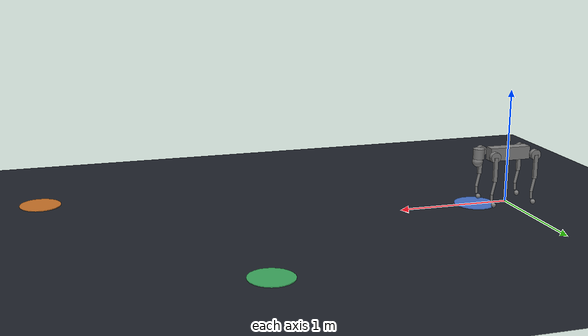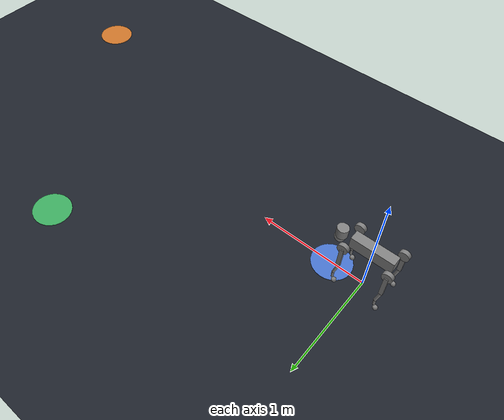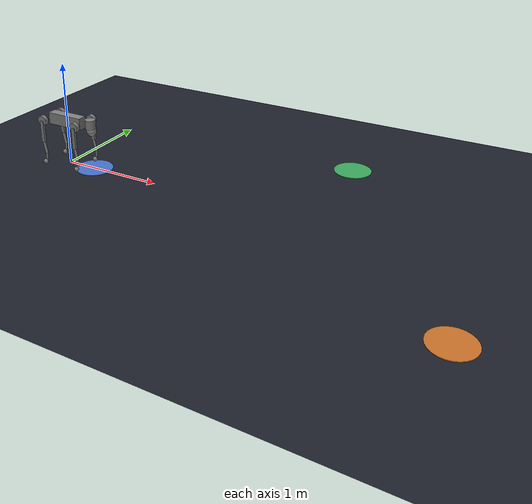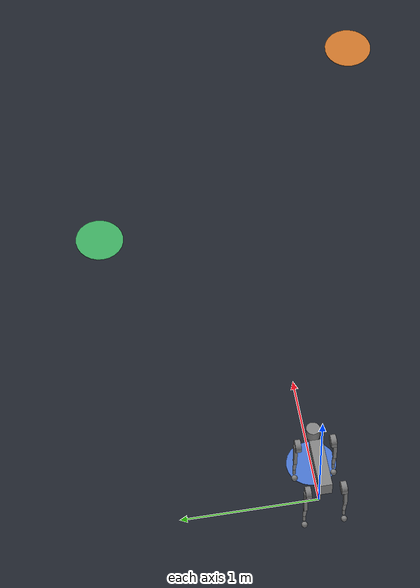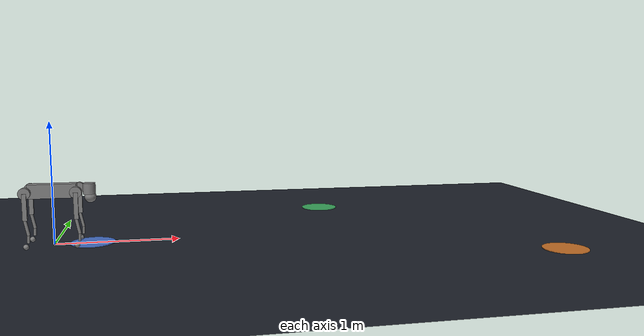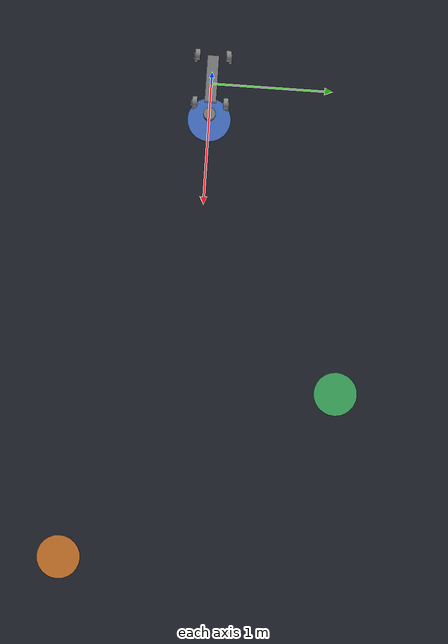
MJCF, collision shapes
<mujoco model="quadloco_mission">
  <!-- Flat scene with three visible (non-colliding) goal markers, for the autonomous
       go-to-goal mission demo. Same Go2 + IMU sensors as scene.xml; go2.xml untouched. -->
  <include file="go2/go2.xml"/>
  <option timestep="0.002"/>
  <statistic center="1.5 0 0.2" extent="3.0"/>

  <visual>
    <headlight diffuse="0.5 0.5 0.5" ambient="0.35 0.35 0.35" specular="0.1 0.1 0.1"/>
    <rgba haze="0.15 0.25 0.35 1"/>
    <global azimuth="120" elevation="-30" offwidth="1280" offheight="720"/>
    <quality shadowsize="4096"/>
  </visual>

  <asset>
    <texture type="skybox" builtin="gradient" rgb1="0.45 0.6 0.78" rgb2="0.05 0.07 0.12" width="512" height="3072"/>
    <texture type="2d" name="grid" builtin="checker" mark="edge" rgb1="0.14 0.16 0.20" rgb2="0.09 0.10 0.13" markrgb="0.5 0.55 0.65" width="300" height="300"/>
    <material name="grid" texture="grid" texuniform="true" texrepeat="8 8" reflectance="0.12"/>
    <material name="g1" rgba="0.30 0.80 0.45 0.85"/>
    <material name="g2" rgba="0.95 0.55 0.20 0.85"/>
    <material name="g3" rgba="0.35 0.55 0.95 0.85"/>
  </asset>

  <worldbody>
    <light name="key" pos="2.0 -1.0 3.0" dir="-0.4 0.2 -1" diffuse="0.8 0.8 0.8" specular="0.2 0.2 0.2"/>
    <light name="fill" pos="-1.0 1.0 2.0" dir="0.3 -0.3 -1" diffuse="0.3 0.3 0.35"/>
    <geom name="floor" type="plane" size="0 0 0.05" material="grid" friction="1.0 0.02 0.001"/>

    <!-- goal markers (visual only: no collision) at the 3 mission waypoints -->
    <geom name="goal1" type="cylinder" size="0.18 0.004" pos="2.5 1.2 0.004" material="g1" contype="0" conaffinity="0"/>
    <geom name="goal2" type="cylinder" size="0.18 0.004" pos="4.0 -1.0 0.004" material="g2" contype="0" conaffinity="0"/>
    <geom name="goal3" type="cylinder" size="0.18 0.004" pos="0.3 0.0 0.004" material="g3" contype="0" conaffinity="0"/>

    <camera name="track_cam" mode="targetbody" target="base" pos="2.0 -2.4 1.4"/>
    <camera name="scene_cam" pos="2.0 -3.4 2.6" xyaxes="1 0 0 0 0.7 0.7"/>
  </worldbody>

  <sensor>
    <framequat name="imu_quat" objtype="site" objname="imu"/>
    <gyro name="imu_gyro" site="imu"/>
    <accelerometer name="imu_acc" site="imu"/>
    <velocimeter name="imu_vel" site="imu"/>
    <framepos name="base_pos" objtype="site" objname="imu"/>
  </sensor>
</mujoco>

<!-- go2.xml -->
<mujoco model="go2">
  <compiler angle="radian" meshdir="go2/assets" autolimits="true"/>

  <option cone="elliptic" impratio="100"/>

  <default>
    <default class="go2">
      <geom friction="0.6" margin="0.001" condim="1"/>
      <joint axis="0 1 0" damping="2" armature="0.01" frictionloss="0.2"/>
      <motor ctrlrange="-23.7 23.7"/>
      <default class="abduction">
        <joint axis="1 0 0" range="-1.0472 1.0472"/>
      </default>
      <default class="hip">
        <default class="front_hip">
          <joint range="-1.5708 3.4907"/>
        </default>
        <default class="back_hip">
          <joint range="-0.5236 4.5379"/>
        </default>
      </default>
      <default class="knee">
        <joint range="-2.7227 -0.83776"/>
        <motor ctrlrange="-45.43 45.43"/>
      </default>
      <default class="visual">
        <geom type="mesh" contype="0" conaffinity="0" group="2"/>
      </default>
      <default class="collision">
        <geom group="3"/>
        <default class="foot">
          <geom size="0.022" pos="-0.002 0 -0.213" priority="1" solimp="0.015 1 0.022" condim="6"
            friction="0.8 0.02 0.01"/>
        </default>
      </default>
    </default>
  </default>

  <asset>
    <material name="metal" rgba=".9 .95 .95 1"/>
    <material name="black" rgba="0 0 0 1"/>
    <material name="white" rgba="1 1 1 1"/>
    <material name="gray" rgba="0.671705 0.692426 0.774270 1"/>

    <mesh file="base_0.obj"/>
    <mesh file="base_1.obj"/>
    <mesh file="base_2.obj"/>
    <mesh file="base_3.obj"/>
    <mesh file="base_4.obj"/>
    <mesh file="hip_0.obj"/>
    <mesh file="hip_1.obj"/>
    <mesh file="thigh_0.obj"/>
    <mesh file="thigh_1.obj"/>
    <mesh file="thigh_mirror_0.obj"/>
    <mesh file="thigh_mirror_1.obj"/>
    <mesh file="calf_0.obj"/>
    <mesh file="calf_1.obj"/>
    <mesh file="calf_mirror_0.obj"/>
    <mesh file="calf_mirror_1.obj"/>
    <mesh file="foot.obj"/>
  </asset>

  <worldbody>
    <body name="base" pos="0 0 0.445" childclass="go2">
      <inertial pos="0.021112 0 -0.005366" quat="-0.000543471 0.713435 -0.00173769 0.700719" mass="6.921"
        diaginertia="0.107027 0.0980771 0.0244531"/>
      <freejoint/>
      <geom mesh="base_0" material="black" class="visual"/>
      <geom mesh="base_1" material="black" class="visual"/>
      <geom mesh="base_2" material="black" class="visual"/>
      <geom mesh="base_3" material="white" class="visual"/>
      <geom mesh="base_4" material="gray" class="visual"/>
      <geom size="0.1881 0.04675 0.057" type="box" class="collision"/>
      <geom size="0.05 0.045" pos="0.285 0 0.01" type="cylinder" class="collision"/>
      <geom size="0.047" pos="0.293 0 -0.06" class="collision"/>
      <site name="imu" pos="-0.02557 0 0.04232"/>
      <body name="FL_hip" pos="0.1934 0.0465 0">
        <inertial pos="-0.0054 0.00194 -0.000105" quat="0.497014 0.499245 0.505462 0.498237" mass="0.678"
          diaginertia="0.00088403 0.000596003 0.000479967"/>
        <joint name="FL_hip_joint" class="abduction"/>
        <geom mesh="hip_0" material="metal" class="visual"/>
        <geom mesh="hip_1" material="gray" class="visual"/>
        <geom size="0.046 0.02" pos="0 0.08 0" quat="1 1 0 0" type="cylinder" class="collision"/>
        <body name="FL_thigh" pos="0 0.0955 0">
          <inertial pos="-0.00374 -0.0223 -0.0327" quat="0.829533 0.0847635 -0.0200632 0.551623" mass="1.152"
            diaginertia="0.00594973 0.00584149 0.000878787"/>
          <joint name="FL_thigh_joint" class="front_hip"/>
          <geom mesh="thigh_0" material="metal" class="visual"/>
          <geom mesh="thigh_1" material="gray" class="visual"/>
          <geom size="0.1065 0.01225 0.017" pos="0 0 -0.1065" quat="0.707107 0 0.707107 0" type="box"
            class="collision"/>
          <body name="FL_calf" pos="0 0 -0.213">
            <inertial pos="0.00629595 -0.000622121 -0.141417" quat="0.710672 0.00154099 -0.00450087 0.703508"
              mass="0.241352" diaginertia="0.0014901 0.00146356 5.31397e-05"/>
            <joint name="FL_calf_joint" class="knee"/>
            <geom mesh="calf_0" material="gray" class="visual"/>
            <geom mesh="calf_1" material="black" class="visual"/>
            <geom size="0.012 0.06" pos="0.008 0 -0.06" quat="0.994493 0 -0.104807 0" type="cylinder"
              class="collision"/>
            <geom size="0.011 0.0325" pos="0.02 0 -0.148" quat="0.999688 0 0.0249974 0" type="cylinder"
              class="collision"/>
            <geom pos="0 0 -0.213" mesh="foot" class="visual" material="black"/>
            <geom name="FL" class="foot"/>
          </body>
        </body>
      </body>
      <body name="FR_hip" pos="0.1934 -0.0465 0">
        <inertial pos="-0.0054 -0.00194 -0.000105" quat="0.498237 0.505462 0.499245 0.497014" mass="0.678"
          diaginertia="0.00088403 0.000596003 0.000479967"/>
        <joint name="FR_hip_joint" class="abduction"/>
        <geom mesh="hip_0" material="metal" class="visual" quat="4.63268e-05 1 0 0"/>
        <geom mesh="hip_1" material="gray" class="visual" quat="4.63268e-05 1 0 0"/>
        <geom size="0.046 0.02" pos="0 -0.08 0" quat="0.707107 0.707107 0 0" type="cylinder" class="collision"/>
        <body name="FR_thigh" pos="0 -0.0955 0">
          <inertial pos="-0.00374 0.0223 -0.0327" quat="0.551623 -0.0200632 0.0847635 0.829533" mass="1.152"
            diaginertia="0.00594973 0.00584149 0.000878787"/>
          <joint name="FR_thigh_joint" class="front_hip"/>
          <geom mesh="thigh_mirror_0" material="metal" class="visual"/>
          <geom mesh="thigh_mirror_1" material="gray" class="visual"/>
          <geom size="0.1065 0.01225 0.017" pos="0 0 -0.1065" quat="0.707107 0 0.707107 0" type="box"
            class="collision"/>
          <body name="FR_calf" pos="0 0 -0.213">
            <inertial pos="0.00629595 0.000622121 -0.141417" quat="0.703508 -0.00450087 0.00154099 0.710672"
              mass="0.241352" diaginertia="0.0014901 0.00146356 5.31397e-05"/>
            <joint name="FR_calf_joint" class="knee"/>
            <geom mesh="calf_mirror_0" material="gray" class="visual"/>
            <geom mesh="calf_mirror_1" material="black" class="visual"/>
            <geom size="0.013 0.06" pos="0.01 0 -0.06" quat="0.995004 0 -0.0998334 0" type="cylinder"
              class="collision"/>
            <geom size="0.011 0.0325" pos="0.02 0 -0.148" quat="0.999688 0 0.0249974 0" type="cylinder"
              class="collision"/>
            <geom pos="0 0 -0.213" mesh="foot" class="visual" material="black"/>
            <geom name="FR" class="foot"/>
          </body>
        </body>
      </body>
      <body name="RL_hip" pos="-0.1934 0.0465 0">
        <inertial pos="0.0054 0.00194 -0.000105" quat="0.505462 0.498237 0.497014 0.499245" mass="0.678"
          diaginertia="0.00088403 0.000596003 0.000479967"/>
        <joint name="RL_hip_joint" class="abduction"/>
        <geom mesh="hip_0" material="metal" class="visual" quat="4.63268e-05 0 1 0"/>
        <geom mesh="hip_1" material="gray" class="visual" quat="4.63268e-05 0 1 0"/>
        <geom size="0.046 0.02" pos="0 0.08 0" quat="0.707107 0.707107 0 0" type="cylinder" class="collision"/>
        <body name="RL_thigh" pos="0 0.0955 0">
          <inertial pos="-0.00374 -0.0223 -0.0327" quat="0.829533 0.0847635 -0.0200632 0.551623" mass="1.152"
            diaginertia="0.00594973 0.00584149 0.000878787"/>
          <joint name="RL_thigh_joint" class="back_hip"/>
          <geom mesh="thigh_0" material="metal" class="visual"/>
          <geom mesh="thigh_1" material="gray" class="visual"/>
          <geom size="0.1065 0.01225 0.017" pos="0 0 -0.1065" quat="0.707107 0 0.707107 0" type="box"
            class="collision"/>
          <body name="RL_calf" pos="0 0 -0.213">
            <inertial pos="0.00629595 -0.000622121 -0.141417" quat="0.710672 0.00154099 -0.00450087 0.703508"
              mass="0.241352" diaginertia="0.0014901 0.00146356 5.31397e-05"/>
            <joint name="RL_calf_joint" class="knee"/>
            <geom mesh="calf_0" material="gray" class="visual"/>
            <geom mesh="calf_1" material="black" class="visual"/>
            <geom size="0.013 0.06" pos="0.01 0 -0.06" quat="0.995004 0 -0.0998334 0" type="cylinder"
              class="collision"/>
            <geom size="0.011 0.0325" pos="0.02 0 -0.148" quat="0.999688 0 0.0249974 0" type="cylinder"
              class="collision"/>
            <geom pos="0 0 -0.213" mesh="foot" class="visual" material="black"/>
            <geom name="RL" class="foot"/>
          </body>
        </body>
      </body>
      <body name="RR_hip" pos="-0.1934 -0.0465 0">
        <inertial pos="0.0054 -0.00194 -0.000105" quat="0.499245 0.497014 0.498237 0.505462" mass="0.678"
          diaginertia="0.00088403 0.000596003 0.000479967"/>
        <joint name="RR_hip_joint" class="abduction"/>
        <geom mesh="hip_0" material="metal" class="visual" quat="2.14617e-09 4.63268e-05 4.63268e-05 -1"/>
        <geom mesh="hip_1" material="gray" class="visual" quat="2.14617e-09 4.63268e-05 4.63268e-05 -1"/>
        <geom size="0.046 0.02" pos="0 -0.08 0" quat="0.707107 0.707107 0 0" type="cylinder" class="collision"/>
        <body name="RR_thigh" pos="0 -0.0955 0">
          <inertial pos="-0.00374 0.0223 -0.0327" quat="0.551623 -0.0200632 0.0847635 0.829533" mass="1.152"
            diaginertia="0.00594973 0.00584149 0.000878787"/>
          <joint name="RR_thigh_joint" class="back_hip"/>
          <geom mesh="thigh_mirror_0" material="metal" class="visual"/>
          <geom mesh="thigh_mirror_1" material="gray" class="visual"/>
          <geom size="0.1065 0.01225 0.017" pos="0 0 -0.1065" quat="0.707107 0 0.707107 0" type="box"
            class="collision"/>
          <body name="RR_calf" pos="0 0 -0.213">
            <inertial pos="0.00629595 0.000622121 -0.141417" quat="0.703508 -0.00450087 0.00154099 0.710672"
              mass="0.241352" diaginertia="0.0014901 0.00146356 5.31397e-05"/>
            <joint name="RR_calf_joint" class="knee"/>
            <geom mesh="calf_mirror_0" material="gray" class="visual"/>
            <geom mesh="calf_mirror_1" material="black" class="visual"/>
            <geom size="0.013 0.06" pos="0.01 0 -0.06" quat="0.995004 0 -0.0998334 0" type="cylinder"
              class="collision"/>
            <geom size="0.011 0.0325" pos="0.02 0 -0.148" quat="0.999688 0 0.0249974 0" type="cylinder"
              class="collision"/>
            <geom pos="0 0 -0.213" mesh="foot" class="visual" material="black"/>
            <geom name="RR" class="foot"/>
          </body>
        </body>
      </body>
    </body>
  </worldbody>

  <actuator>
    <motor class="abduction" name="FL_hip" joint="FL_hip_joint"/>
    <motor class="hip" name="FL_thigh" joint="FL_thigh_joint"/>
    <motor class="knee" name="FL_calf" joint="FL_calf_joint"/>
    <motor class="abduction" name="FR_hip" joint="FR_hip_joint"/>
    <motor class="hip" name="FR_thigh" joint="FR_thigh_joint"/>
    <motor class="knee" name="FR_calf" joint="FR_calf_joint"/>
    <motor class="abduction" name="RL_hip" joint="RL_hip_joint"/>
    <motor class="hip" name="RL_thigh" joint="RL_thigh_joint"/>
    <motor class="knee" name="RL_calf" joint="RL_calf_joint"/>
    <motor class="abduction" name="RR_hip" joint="RR_hip_joint"/>
    <motor class="hip" name="RR_thigh" joint="RR_thigh_joint"/>
    <motor class="knee" name="RR_calf" joint="RR_calf_joint"/>
  </actuator>

  <keyframe>
    <key name="home" qpos="0 0 0.27 1 0 0 0 0 0.9 -1.8 0 0.9 -1.8 0 0.9 -1.8 0 0.9 -1.8"
      ctrl="0 0.9 -1.8 0 0.9 -1.8 0 0.9 -1.8 0 0.9 -1.8"/>
  </keyframe>
</mujoco>
